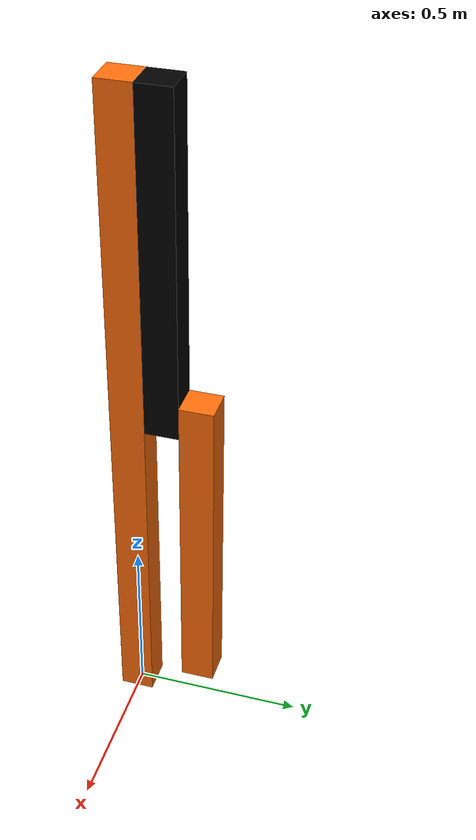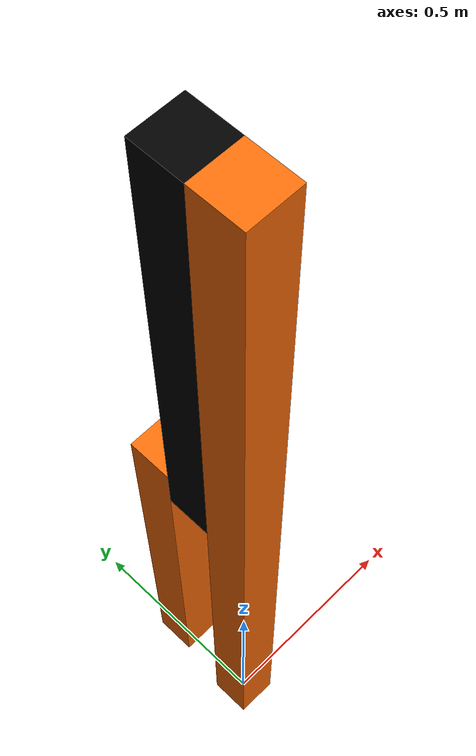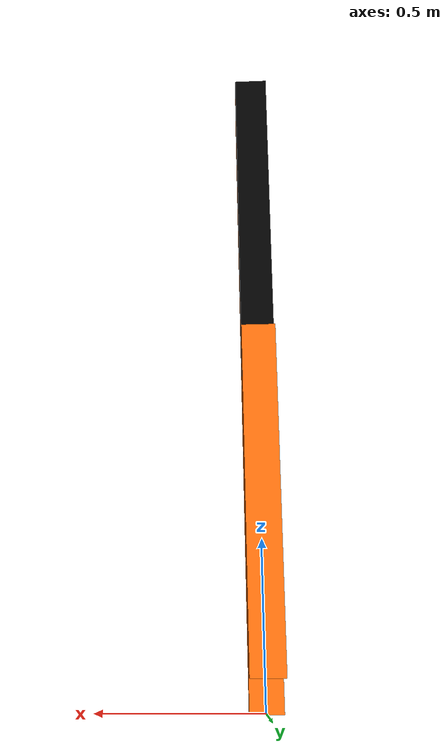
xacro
<?xml version="1.0"?>
<!-- Revolute-Revolute Manipulator -->
<robot name="rrbot" xmlns:xacro="http://ros.org/wiki/xacro">

  <!-- Constants for robot dimensions -->
  <xacro:property name="mass" value="1" /> <!-- arbitrary value for mass -->
  <xacro:property name="width" value="0.1" /> <!-- Square dimensions (widthxwidth) of beams -->
  <xacro:property name="height1" value="2" /> <!-- Link 1 -->
  <xacro:property name="height2" value="1" /> <!-- Link 2 -->
  <xacro:property name="height3" value="1" /> <!-- Link 3 -->
  <xacro:property name="axel_offset" value="0.05" /> <!-- Space btw top of beam and the each joint -->

  <!-- Import all Gazebo-customization elements, including Gazebo colors -->
  <xacro:include filename="$(find rrbot_description)/urdf/rrbot.gazebo" />
  <!-- Import Rviz colors -->
  <xacro:include filename="$(find rrbot_description)/urdf/extras.xacro" />

  <!-- Used for fixing robot to Gazebo 'base_link' -->
  <link name="world"/>

  <joint name="fixed" type="fixed">
    <parent link="world"/>
    <child link="link1"/>
  </joint>

  <!-- Base Link -->
  <link name="link1">
    <collision>
      <origin xyz="0 0 ${height1/2}" rpy="0 0 0"/>
      <geometry>
	      <box size="${width} ${width} ${height1}"/>
      </geometry>
    </collision>

    <visual>
      <origin xyz="0 0 ${height1/2}" rpy="0 0 0"/>
      <geometry>
	      <box size="${width} ${width} ${height1}"/>
      </geometry>
      <material name="orange"/>
    </visual>

    <xacro:inertial_cuboid_with_pose mass="${mass}" x_length="${width}" y_length="${width}" z_length="${height1}">
      <origin xyz="0 0 ${height1/2}" rpy="0 0 0"/>
    </xacro:inertial_cuboid_with_pose>
  </link>

  <joint name="joint1" type="continuous">
    <parent link="link1"/>
    <child link="link2"/>
    <origin xyz="0 ${width} ${height1 - axel_offset}" rpy="0 ${pi} 0"/>
    <axis xyz="0 1 0"/>
    <dynamics damping="0.7"/>
  </joint>

  <!-- Middle Link -->
  <link name="link2">
    <collision>
      <origin xyz="0 0 ${height2/2 - axel_offset}" rpy="0 0 0"/>
      <geometry>
	      <box size="${width} ${width} ${height2}"/>
      </geometry>
    </collision>

    <visual>
      <origin xyz="0 0 ${height2/2 - axel_offset}" rpy="0 0 0"/>
      <geometry>
	      <box size="${width} ${width} ${height2}"/>
      </geometry>
      <material name="black"/>
    </visual>

    <xacro:inertial_cuboid_with_pose mass="${mass}" x_length="${width}" y_length="${width}" z_length="${height2}">
      <origin xyz="0 0 ${height2/2 - axel_offset}" rpy="0 0 0"/>
    </xacro:inertial_cuboid_with_pose>
  </link>

  <joint name="joint2" type="continuous">
    <parent link="link2"/>
    <child link="link3"/>
    <origin xyz="0 ${width} ${height2 - axel_offset*2}" rpy="0 0 0"/>
    <axis xyz="0 1 0"/>
    <dynamics damping="0.7"/>
  </joint>

  <!-- Top Link -->
  <link name="link3">
    <collision>
      <origin xyz="0 0 ${height3/2 - axel_offset}" rpy="0 0 0"/>
      <geometry>
	      <box size="${width} ${width} ${height3}"/>
      </geometry>
    </collision>

    <visual>
      <origin xyz="0 0 ${height3/2 - axel_offset}" rpy="0 0 0"/>
      <geometry>
	      <box size="${width} ${width} ${height3}"/>
      </geometry>
      <material name="orange"/>
    </visual>

    <xacro:inertial_cuboid_with_pose mass="${mass}" x_length="${width}" y_length="${width}" z_length="${height3}">
      <origin xyz="0 0 ${height3/2 - axel_offset}" rpy="0 0 0"/>
    </xacro:inertial_cuboid_with_pose>
  </link>

  <!--
    Acrobot doesn't require an actuator in "joint1" because it's an underactuated robot.
   -->

  <transmission name="tran1">
    <type>transmission_interface/SimpleTransmission</type>
    <joint name="joint1">
      <hardwareInterface>hardware_interface/EffortJointInterface</hardwareInterface>
    </joint>
    <actuator name="motor1">
      <hardwareInterface>hardware_interface/EffortJointInterface</hardwareInterface>
      <mechanicalReduction>1</mechanicalReduction>
    </actuator>
  </transmission>

  <transmission name="tran2">
    <type>transmission_interface/SimpleTransmission</type>
    <joint name="joint2">
      <hardwareInterface>hardware_interface/EffortJointInterface</hardwareInterface>
    </joint>
    <actuator name="motor2">
      <hardwareInterface>hardware_interface/EffortJointInterface</hardwareInterface>
      <mechanicalReduction>1</mechanicalReduction>
    </actuator>
  </transmission>

</robot>

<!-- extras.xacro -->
<robot xmlns:xacro="http://ros.org/wiki/xacro">

  <material name="black">
    <color rgba="0.0 0.0 0.0 1.0"/>
  </material>

  <material name="orange">
    <color rgba="${255/255} ${108/255} ${10/255} 1.0"/>
  </material>

  <xacro:macro name="inertial_cuboid_with_pose" params="mass x_length y_length z_length *origin">
    <inertial>
      <xacro:insert_block name="origin"/>
      <mass value="${mass}" />
      <inertia ixx="${(1/12) * mass * (y_length*y_length + z_length*z_length)}" ixy="0.0" ixz="0.0"
               iyy="${(1/12) * mass * (x_length*x_length + z_length*z_length)}" iyz="0.0"
               izz="${(1/12) * mass * (x_length*x_length + y_length*y_length)}" />
    </inertial>
  </xacro:macro>

</robot>
